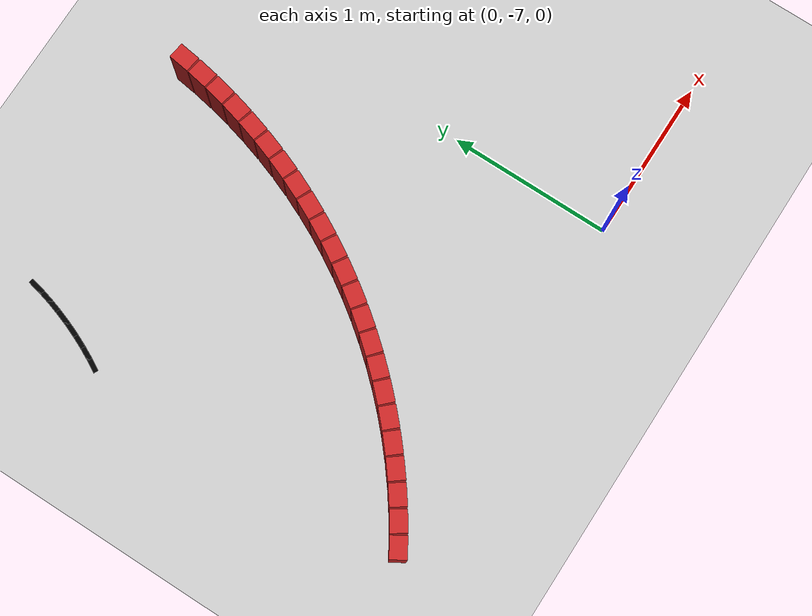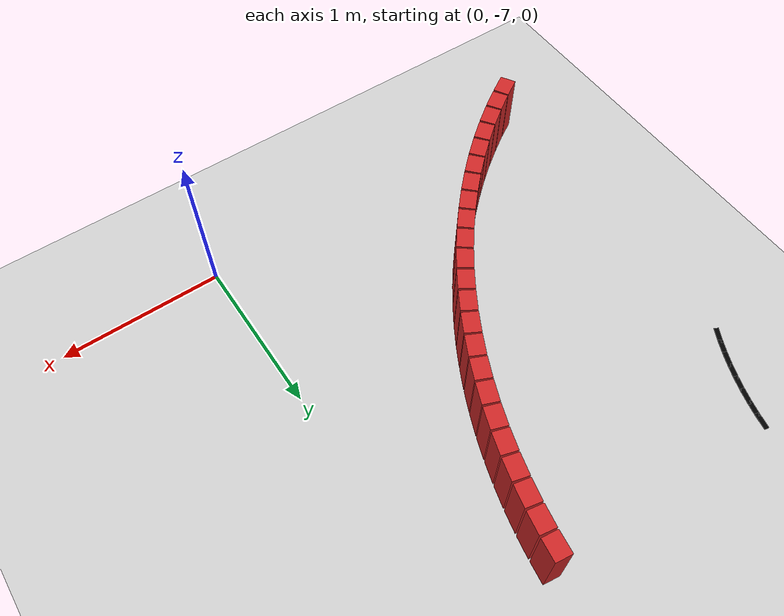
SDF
<sdf version="1.6">
 <world name="new_race_track">
  <include><uri>model://ground_plane</uri></include>
  <include><uri>model://sun</uri></include>
  <model name="race_track">
   <static>true</static>
   <link name="wall_link_466">
    <collision name="c"><geometry><box><size>0.1305 0.1 0.4</size></box></geometry></collision>
    <visual name="v">
     <geometry><box><size>0.1305 0.1 0.4</size></box></geometry>
     <material><ambient>0.8 0.15 0.15 1</ambient><diffuse>0.8 0.15 0.15 1</diffuse></material>
    </visual>
    <pose>-2.1895 -6.9949 0.200 0 0 0.5437</pose>
   </link>
   <link name="wall_link_467">
    <collision name="c"><geometry><box><size>0.1305 0.1 0.4</size></box></geometry></collision>
    <visual name="v">
     <geometry><box><size>0.1305 0.1 0.4</size></box></geometry>
     <material><ambient>0.8 0.15 0.15 1</ambient><diffuse>0.8 0.15 0.15 1</diffuse></material>
    </visual>
    <pose>-2.0704 -6.9196 0.200 0 0 0.5840</pose>
   </link>
   <link name="wall_link_468">
    <collision name="c"><geometry><box><size>0.1305 0.1 0.4</size></box></geometry></collision>
    <visual name="v">
     <geometry><box><size>0.1305 0.1 0.4</size></box></geometry>
     <material><ambient>0.8 0.15 0.15 1</ambient><diffuse>0.8 0.15 0.15 1</diffuse></material>
    </visual>
    <pose>-1.9544 -6.8395 0.200 0 0 0.6243</pose>
   </link>
   <link name="wall_link_469">
    <collision name="c"><geometry><box><size>0.1305 0.1 0.4</size></box></geometry></collision>
    <visual name="v">
     <geometry><box><size>0.1305 0.1 0.4</size></box></geometry>
     <material><ambient>0.8 0.15 0.15 1</ambient><diffuse>0.8 0.15 0.15 1</diffuse></material>
    </visual>
    <pose>-1.8417 -6.7548 0.200 0 0 0.6646</pose>
   </link>
   <link name="wall_link_470">
    <collision name="c"><geometry><box><size>0.1305 0.1 0.4</size></box></geometry></collision>
    <visual name="v">
     <geometry><box><size>0.1305 0.1 0.4</size></box></geometry>
     <material><ambient>0.8 0.15 0.15 1</ambient><diffuse>0.8 0.15 0.15 1</diffuse></material>
    </visual>
    <pose>-1.7326 -6.6657 0.200 0 0 0.7048</pose>
   </link>
   <link name="wall_link_471">
    <collision name="c"><geometry><box><size>0.1305 0.1 0.4</size></box></geometry></collision>
    <visual name="v">
     <geometry><box><size>0.1305 0.1 0.4</size></box></geometry>
     <material><ambient>0.8 0.15 0.15 1</ambient><diffuse>0.8 0.15 0.15 1</diffuse></material>
    </visual>
    <pose>-1.6271 -6.5722 0.200 0 0 0.7451</pose>
   </link>
   <link name="wall_link_472">
    <collision name="c"><geometry><box><size>0.1305 0.1 0.4</size></box></geometry></collision>
    <visual name="v">
     <geometry><box><size>0.1305 0.1 0.4</size></box></geometry>
     <material><ambient>0.8 0.15 0.15 1</ambient><diffuse>0.8 0.15 0.15 1</diffuse></material>
    </visual>
    <pose>-1.5254 -6.4746 0.200 0 0 0.7854</pose>
   </link>
   <link name="wall_link_473">
    <collision name="c"><geometry><box><size>0.1305 0.1 0.4</size></box></geometry></collision>
    <visual name="v">
     <geometry><box><size>0.1305 0.1 0.4</size></box></geometry>
     <material><ambient>0.8 0.15 0.15 1</ambient><diffuse>0.8 0.15 0.15 1</diffuse></material>
    </visual>
    <pose>-1.4278 -6.3729 0.200 0 0 0.8257</pose>
   </link>
   <link name="wall_link_474">
    <collision name="c"><geometry><box><size>0.1305 0.1 0.4</size></box></geometry></collision>
    <visual name="v">
     <geometry><box><size>0.1305 0.1 0.4</size></box></geometry>
     <material><ambient>0.8 0.15 0.15 1</ambient><diffuse>0.8 0.15 0.15 1</diffuse></material>
    </visual>
    <pose>-1.3343 -6.2674 0.200 0 0 0.8660</pose>
   </link>
   <link name="wall_link_475">
    <collision name="c"><geometry><box><size>0.1305 0.1 0.4</size></box></geometry></collision>
    <visual name="v">
     <geometry><box><size>0.1305 0.1 0.4</size></box></geometry>
     <material><ambient>0.8 0.15 0.15 1</ambient><diffuse>0.8 0.15 0.15 1</diffuse></material>
    </visual>
    <pose>-1.2452 -6.1583 0.200 0 0 0.9062</pose>
   </link>
   <link name="wall_link_476">
    <collision name="c"><geometry><box><size>0.1305 0.1 0.4</size></box></geometry></collision>
    <visual name="v">
     <geometry><box><size>0.1305 0.1 0.4</size></box></geometry>
     <material><ambient>0.8 0.15 0.15 1</ambient><diffuse>0.8 0.15 0.15 1</diffuse></material>
    </visual>
    <pose>-1.1605 -6.0456 0.200 0 0 0.9465</pose>
   </link>
   <link name="wall_link_477">
    <collision name="c"><geometry><box><size>0.1305 0.1 0.4</size></box></geometry></collision>
    <visual name="v">
     <geometry><box><size>0.1305 0.1 0.4</size></box></geometry>
     <material><ambient>0.8 0.15 0.15 1</ambient><diffuse>0.8 0.15 0.15 1</diffuse></material>
    </visual>
    <pose>-1.0804 -5.9296 0.200 0 0 0.9868</pose>
   </link>
   <link name="wall_link_478">
    <collision name="c"><geometry><box><size>0.1305 0.1 0.4</size></box></geometry></collision>
    <visual name="v">
     <geometry><box><size>0.1305 0.1 0.4</size></box></geometry>
     <material><ambient>0.8 0.15 0.15 1</ambient><diffuse>0.8 0.15 0.15 1</diffuse></material>
    </visual>
    <pose>-1.0051 -5.8105 0.200 0 0 1.0271</pose>
   </link>
   <link name="wall_link_479">
    <collision name="c"><geometry><box><size>0.1305 0.1 0.4</size></box></geometry></collision>
    <visual name="v">
     <geometry><box><size>0.1305 0.1 0.4</size></box></geometry>
     <material><ambient>0.8 0.15 0.15 1</ambient><diffuse>0.8 0.15 0.15 1</diffuse></material>
    </visual>
    <pose>-0.9346 -5.6884 0.200 0 0 1.0673</pose>
   </link>
   <link name="wall_link_480">
    <collision name="c"><geometry><box><size>0.1305 0.1 0.4</size></box></geometry></collision>
    <visual name="v">
     <geometry><box><size>0.1305 0.1 0.4</size></box></geometry>
     <material><ambient>0.8 0.15 0.15 1</ambient><diffuse>0.8 0.15 0.15 1</diffuse></material>
    </visual>
    <pose>-0.8691 -5.5636 0.200 0 0 1.1076</pose>
   </link>
   <link name="wall_link_481">
    <collision name="c"><geometry><box><size>0.1305 0.1 0.4</size></box></geometry></collision>
    <visual name="v">
     <geometry><box><size>0.1305 0.1 0.4</size></box></geometry>
     <material><ambient>0.8 0.15 0.15 1</ambient><diffuse>0.8 0.15 0.15 1</diffuse></material>
    </visual>
    <pose>-0.8087 -5.4363 0.200 0 0 1.1479</pose>
   </link>
   <link name="wall_link_482">
    <collision name="c"><geometry><box><size>0.1305 0.1 0.4</size></box></geometry></collision>
    <visual name="v">
     <geometry><box><size>0.1305 0.1 0.4</size></box></geometry>
     <material><ambient>0.8 0.15 0.15 1</ambient><diffuse>0.8 0.15 0.15 1</diffuse></material>
    </visual>
    <pose>-0.7535 -5.3066 0.200 0 0 1.1882</pose>
   </link>
   <link name="wall_link_483">
    <collision name="c"><geometry><box><size>0.1305 0.1 0.4</size></box></geometry></collision>
    <visual name="v">
     <geometry><box><size>0.1305 0.1 0.4</size></box></geometry>
     <material><ambient>0.8 0.15 0.15 1</ambient><diffuse>0.8 0.15 0.15 1</diffuse></material>
    </visual>
    <pose>-0.7035 -5.1748 0.200 0 0 1.2284</pose>
   </link>
   <link name="wall_link_484">
    <collision name="c"><geometry><box><size>0.1305 0.1 0.4</size></box></geometry></collision>
    <visual name="v">
     <geometry><box><size>0.1305 0.1 0.4</size></box></geometry>
     <material><ambient>0.8 0.15 0.15 1</ambient><diffuse>0.8 0.15 0.15 1</diffuse></material>
    </visual>
    <pose>-0.6589 -5.0411 0.200 0 0 1.2687</pose>
   </link>
   <link name="wall_link_485">
    <collision name="c"><geometry><box><size>0.1305 0.1 0.4</size></box></geometry></collision>
    <visual name="v">
     <geometry><box><size>0.1305 0.1 0.4</size></box></geometry>
     <material><ambient>0.8 0.15 0.15 1</ambient><diffuse>0.8 0.15 0.15 1</diffuse></material>
    </visual>
    <pose>-0.6197 -4.9058 0.200 0 0 1.3090</pose>
   </link>
   <link name="wall_link_486">
    <collision name="c"><geometry><box><size>0.1305 0.1 0.4</size></box></geometry></collision>
    <visual name="v">
     <geometry><box><size>0.1305 0.1 0.4</size></box></geometry>
     <material><ambient>0.8 0.15 0.15 1</ambient><diffuse>0.8 0.15 0.15 1</diffuse></material>
    </visual>
    <pose>-0.5859 -4.7689 0.200 0 0 1.3493</pose>
   </link>
   <link name="wall_link_487">
    <collision name="c"><geometry><box><size>0.1305 0.1 0.4</size></box></geometry></collision>
    <visual name="v">
     <geometry><box><size>0.1305 0.1 0.4</size></box></geometry>
     <material><ambient>0.8 0.15 0.15 1</ambient><diffuse>0.8 0.15 0.15 1</diffuse></material>
    </visual>
    <pose>-0.5577 -4.6308 0.200 0 0 1.3896</pose>
   </link>
   <link name="wall_link_488">
    <collision name="c"><geometry><box><size>0.1305 0.1 0.4</size></box></geometry></collision>
    <visual name="v">
     <geometry><box><size>0.1305 0.1 0.4</size></box></geometry>
     <material><ambient>0.8 0.15 0.15 1</ambient><diffuse>0.8 0.15 0.15 1</diffuse></material>
    </visual>
    <pose>-0.5351 -4.4917 0.200 0 0 1.4298</pose>
   </link>
   <link name="line_link_964">
    <visual name="v">
     <geometry><box><size>0.1005 0.03 0.002</size></box></geometry>
     <material><ambient>0 0 0 1</ambient><diffuse>0 0 0 1</diffuse></material>
    </visual>
    <pose>-2.2485 -4.9647 0.002 0 0 1.0673</pose>
   </link>
   <link name="line_link_965">
    <visual name="v">
     <geometry><box><size>0.1005 0.03 0.002</size></box></geometry>
     <material><ambient>0 0 0 1</ambient><diffuse>0 0 0 1</diffuse></material>
    </visual>
    <pose>-2.2111 -4.8934 0.002 0 0 1.1076</pose>
   </link>
   <link name="line_link_966">
    <visual name="v">
     <geometry><box><size>0.1005 0.03 0.002</size></box></geometry>
     <material><ambient>0 0 0 1</ambient><diffuse>0 0 0 1</diffuse></material>
    </visual>
    <pose>-2.1766 -4.8207 0.002 0 0 1.1479</pose>
   </link>
   <link name="line_link_967">
    <visual name="v">
     <geometry><box><size>0.1005 0.03 0.002</size></box></geometry>
     <material><ambient>0 0 0 1</ambient><diffuse>0 0 0 1</diffuse></material>
    </visual>
    <pose>-2.1450 -4.7466 0.002 0 0 1.1882</pose>
   </link>
   <link name="line_link_968">
    <visual name="v">
     <geometry><box><size>0.1005 0.03 0.002</size></box></geometry>
     <material><ambient>0 0 0 1</ambient><diffuse>0 0 0 1</diffuse></material>
    </visual>
    <pose>-2.1164 -4.6713 0.002 0 0 1.2284</pose>
   </link>
   <link name="line_link_969">
    <visual name="v">
     <geometry><box><size>0.1005 0.03 0.002</size></box></geometry>
     <material><ambient>0 0 0 1</ambient><diffuse>0 0 0 1</diffuse></material>
    </visual>
    <pose>-2.0909 -4.5949 0.002 0 0 1.2687</pose>
   </link>
   <link name="line_link_970">
    <visual name="v">
     <geometry><box><size>0.1005 0.03 0.002</size></box></geometry>
     <material><ambient>0 0 0 1</ambient><diffuse>0 0 0 1</diffuse></material>
    </visual>
    <pose>-2.0685 -4.5175 0.002 0 0 1.3090</pose>
   </link>
   <link name="line_link_971">
    <visual name="v">
     <geometry><box><size>0.1005 0.03 0.002</size></box></geometry>
     <material><ambient>0 0 0 1</ambient><diffuse>0 0 0 1</diffuse></material>
    </visual>
    <pose>-2.0493 -4.4393 0.002 0 0 1.3493</pose>
   </link>
  </model>
 </world>
</sdf>
